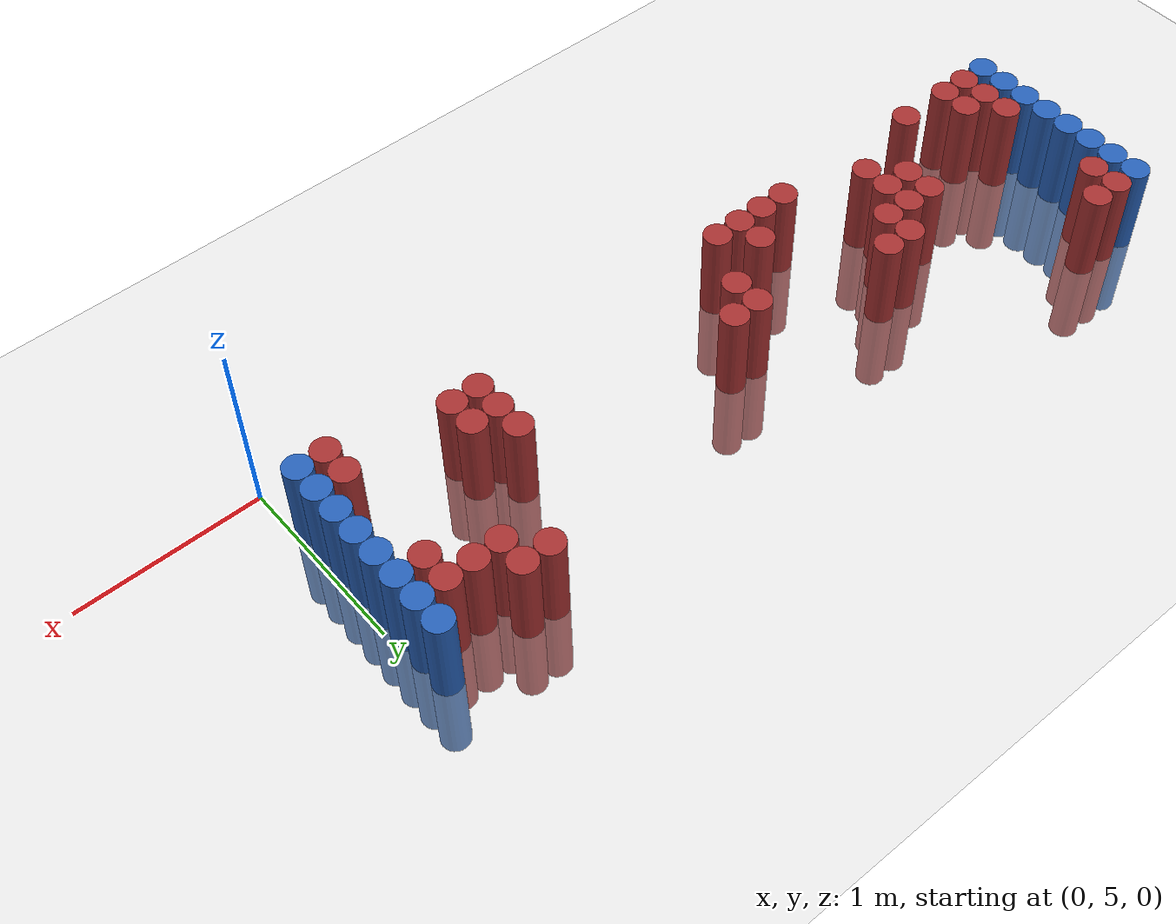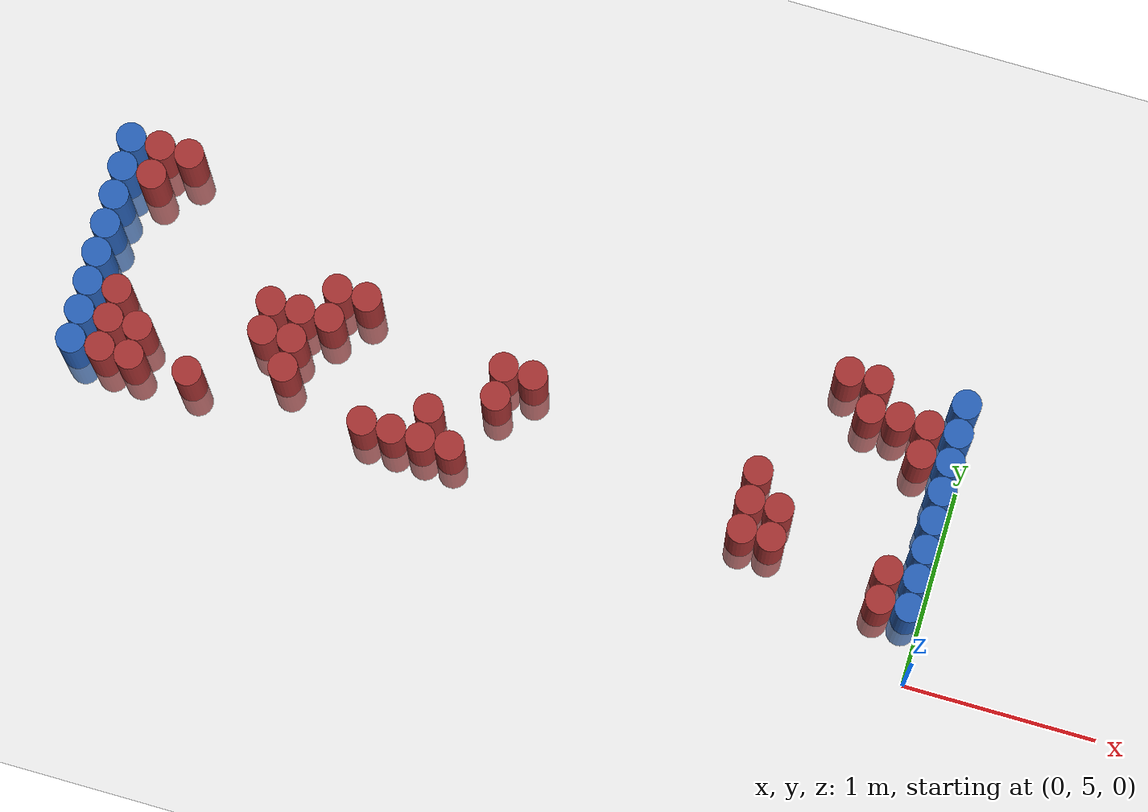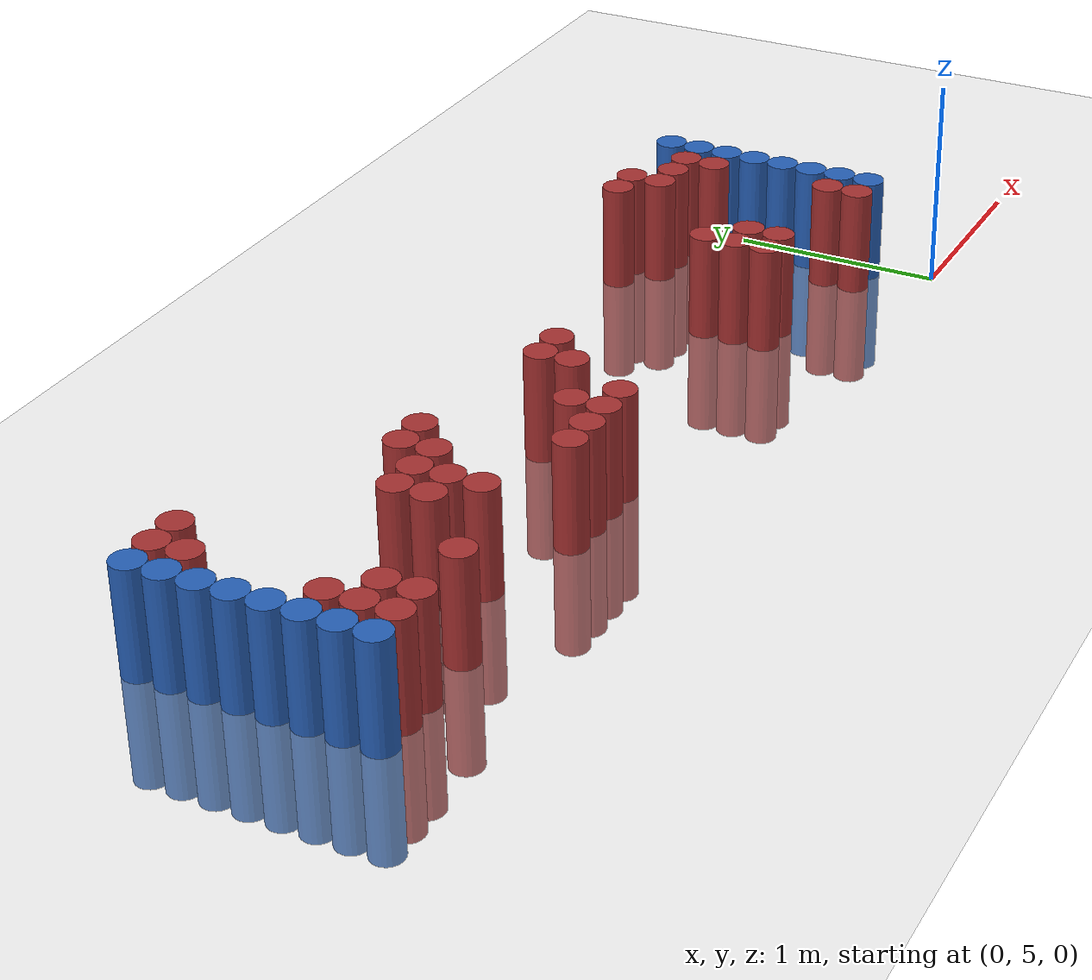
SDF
<sdf version="1.6">
 <world name="default">
  <model name="ground_plane">
   <static>1</static>
   <link name="link">
    <collision name="collision">
     <geometry><plane><normal>0 0 1</normal><size>100 100</size></plane></geometry>
     <surface><friction><ode><mu>100</mu><mu2>50</mu2></ode></friction></surface>
    </collision>
    <visual name="visual">
     <cast_shadows>0</cast_shadows>
     <geometry><plane><normal>0 0 1</normal><size>100 100</size></plane></geometry>
     <material>
      <script><uri>file://media/materials/scripts/gazebo.material</uri><name>Gazebo/Grey</name></script>
     </material>
    </visual>
   </link>
  </model>
  <model name="unit_cylinder_98">
   <static>1</static>
   <pose>-4.425000 5.475000 0.000000 0.000000 0.000000 0.000000</pose>
   <link name="link">
    <inertial>
     <mass>1</mass>
     <inertia><ixx>0.145833</ixx><ixy>0</ixy><ixz>0</ixz><iyy>0.145833</iyy><iyz>0</iyz><izz>0.125</izz></inertia>
    </inertial>
    <collision name="collision">
     <geometry><cylinder><radius>0.075000</radius><length>1</length></cylinder></geometry>
    </collision>
    <visual name="visual">
     <geometry><cylinder><radius>0.075000</radius><length>1</length></cylinder></geometry>
     <material>
      <ambient>0.152000 0.379000 0.720000 1</ambient>
      <diffuse>0.152000 0.379000 0.720000 1</diffuse>
     </material>
     <material>
      <script><name>Gazebo/Grey</name><uri>file://media/materials/scripts/gazebo.material</uri></script>
     </material>
    </visual>
   </link>
  </model>
  <model name="unit_cylinder_99">
   <static>1</static>
   <pose>-4.425000 5.625000 0.000000 0.000000 0.000000 0.000000</pose>
   <link name="link">
    <inertial>
     <mass>1</mass>
     <inertia><ixx>0.145833</ixx><ixy>0</ixy><ixz>0</ixz><iyy>0.145833</iyy><iyz>0</iyz><izz>0.125</izz></inertia>
    </inertial>
    <collision name="collision">
     <geometry><cylinder><radius>0.075000</radius><length>1</length></cylinder></geometry>
    </collision>
    <visual name="visual">
     <geometry><cylinder><radius>0.075000</radius><length>1</length></cylinder></geometry>
     <material>
      <ambient>0.152000 0.379000 0.720000 1</ambient>
      <diffuse>0.152000 0.379000 0.720000 1</diffuse>
     </material>
     <material>
      <script><name>Gazebo/Grey</name><uri>file://media/materials/scripts/gazebo.material</uri></script>
     </material>
    </visual>
   </link>
  </model>
  <model name="unit_cylinder_100">
   <static>1</static>
   <pose>-4.425000 5.775000 0.000000 0.000000 0.000000 0.000000</pose>
   <link name="link">
    <inertial>
     <mass>1</mass>
     <inertia><ixx>0.145833</ixx><ixy>0</ixy><ixz>0</ixz><iyy>0.145833</iyy><iyz>0</iyz><izz>0.125</izz></inertia>
    </inertial>
    <collision name="collision">
     <geometry><cylinder><radius>0.075000</radius><length>1</length></cylinder></geometry>
    </collision>
    <visual name="visual">
     <geometry><cylinder><radius>0.075000</radius><length>1</length></cylinder></geometry>
     <material>
      <ambient>0.152000 0.379000 0.720000 1</ambient>
      <diffuse>0.152000 0.379000 0.720000 1</diffuse>
     </material>
     <material>
      <script><name>Gazebo/Grey</name><uri>file://media/materials/scripts/gazebo.material</uri></script>
     </material>
    </visual>
   </link>
  </model>
  <model name="unit_cylinder_101">
   <static>1</static>
   <pose>-4.425000 5.925000 0.000000 0.000000 0.000000 0.000000</pose>
   <link name="link">
    <inertial>
     <mass>1</mass>
     <inertia><ixx>0.145833</ixx><ixy>0</ixy><ixz>0</ixz><iyy>0.145833</iyy><iyz>0</iyz><izz>0.125</izz></inertia>
    </inertial>
    <collision name="collision">
     <geometry><cylinder><radius>0.075000</radius><length>1</length></cylinder></geometry>
    </collision>
    <visual name="visual">
     <geometry><cylinder><radius>0.075000</radius><length>1</length></cylinder></geometry>
     <material>
      <ambient>0.152000 0.379000 0.720000 1</ambient>
      <diffuse>0.152000 0.379000 0.720000 1</diffuse>
     </material>
     <material>
      <script><name>Gazebo/Grey</name><uri>file://media/materials/scripts/gazebo.material</uri></script>
     </material>
    </visual>
   </link>
  </model>
  <model name="unit_cylinder_102">
   <static>1</static>
   <pose>-4.425000 6.075000 0.000000 0.000000 0.000000 0.000000</pose>
   <link name="link">
    <inertial>
     <mass>1</mass>
     <inertia><ixx>0.145833</ixx><ixy>0</ixy><ixz>0</ixz><iyy>0.145833</iyy><iyz>0</iyz><izz>0.125</izz></inertia>
    </inertial>
    <collision name="collision">
     <geometry><cylinder><radius>0.075000</radius><length>1</length></cylinder></geometry>
    </collision>
    <visual name="visual">
     <geometry><cylinder><radius>0.075000</radius><length>1</length></cylinder></geometry>
     <material>
      <ambient>0.152000 0.379000 0.720000 1</ambient>
      <diffuse>0.152000 0.379000 0.720000 1</diffuse>
     </material>
     <material>
      <script><name>Gazebo/Grey</name><uri>file://media/materials/scripts/gazebo.material</uri></script>
     </material>
    </visual>
   </link>
  </model>
  <model name="unit_cylinder_103">
   <static>1</static>
   <pose>-4.425000 6.225000 0.000000 0.000000 0.000000 0.000000</pose>
   <link name="link">
    <inertial>
     <mass>1</mass>
     <inertia><ixx>0.145833</ixx><ixy>0</ixy><ixz>0</ixz><iyy>0.145833</iyy><iyz>0</iyz><izz>0.125</izz></inertia>
    </inertial>
    <collision name="collision">
     <geometry><cylinder><radius>0.075000</radius><length>1</length></cylinder></geometry>
    </collision>
    <visual name="visual">
     <geometry><cylinder><radius>0.075000</radius><length>1</length></cylinder></geometry>
     <material>
      <ambient>0.152000 0.379000 0.720000 1</ambient>
      <diffuse>0.152000 0.379000 0.720000 1</diffuse>
     </material>
     <material>
      <script><name>Gazebo/Grey</name><uri>file://media/materials/scripts/gazebo.material</uri></script>
     </material>
    </visual>
   </link>
  </model>
  <model name="unit_cylinder_104">
   <static>1</static>
   <pose>-4.425000 6.375000 0.000000 0.000000 0.000000 0.000000</pose>
   <link name="link">
    <inertial>
     <mass>1</mass>
     <inertia><ixx>0.145833</ixx><ixy>0</ixy><ixz>0</ixz><iyy>0.145833</iyy><iyz>0</iyz><izz>0.125</izz></inertia>
    </inertial>
    <collision name="collision">
     <geometry><cylinder><radius>0.075000</radius><length>1</length></cylinder></geometry>
    </collision>
    <visual name="visual">
     <geometry><cylinder><radius>0.075000</radius><length>1</length></cylinder></geometry>
     <material>
      <ambient>0.152000 0.379000 0.720000 1</ambient>
      <diffuse>0.152000 0.379000 0.720000 1</diffuse>
     </material>
     <material>
      <script><name>Gazebo/Grey</name><uri>file://media/materials/scripts/gazebo.material</uri></script>
     </material>
    </visual>
   </link>
  </model>
  <model name="unit_cylinder_105">
   <static>1</static>
   <pose>-4.425000 6.525000 0.000000 0.000000 0.000000 0.000000</pose>
   <link name="link">
    <inertial>
     <mass>1</mass>
     <inertia><ixx>0.145833</ixx><ixy>0</ixy><ixz>0</ixz><iyy>0.145833</iyy><iyz>0</iyz><izz>0.125</izz></inertia>
    </inertial>
    <collision name="collision">
     <geometry><cylinder><radius>0.075000</radius><length>1</length></cylinder></geometry>
    </collision>
    <visual name="visual">
     <geometry><cylinder><radius>0.075000</radius><length>1</length></cylinder></geometry>
     <material>
      <ambient>0.152000 0.379000 0.720000 1</ambient>
      <diffuse>0.152000 0.379000 0.720000 1</diffuse>
     </material>
     <material>
      <script><name>Gazebo/Grey</name><uri>file://media/materials/scripts/gazebo.material</uri></script>
     </material>
    </visual>
   </link>
  </model>
  <model name="unit_cylinder_127">
   <static>1</static>
   <pose>-4.275000 5.475000 0.000000 0.000000 0.000000 0.000000</pose>
   <link name="link">
    <inertial>
     <mass>1</mass>
     <inertia><ixx>0.145833</ixx><ixy>0</ixy><ixz>0</ixz><iyy>0.145833</iyy><iyz>0</iyz><izz>0.125</izz></inertia>
    </inertial>
    <collision name="collision">
     <geometry><cylinder><radius>0.075000</radius><length>1</length></cylinder></geometry>
    </collision>
    <visual name="visual">
     <geometry><cylinder><radius>0.075000</radius><length>1</length></cylinder></geometry>
     <material>
      <ambient>0.648000 0.192000 0.192000 1</ambient>
      <diffuse>0.648000 0.192000 0.192000 1</diffuse>
     </material>
     <material>
      <script><name>Gazebo/Grey</name><uri>file://media/materials/scripts/gazebo.material</uri></script>
     </material>
    </visual>
   </link>
  </model>
  <model name="unit_cylinder_128">
   <static>1</static>
   <pose>-4.275000 5.625000 0.000000 0.000000 0.000000 0.000000</pose>
   <link name="link">
    <inertial>
     <mass>1</mass>
     <inertia><ixx>0.145833</ixx><ixy>0</ixy><ixz>0</ixz><iyy>0.145833</iyy><iyz>0</iyz><izz>0.125</izz></inertia>
    </inertial>
    <collision name="collision">
     <geometry><cylinder><radius>0.075000</radius><length>1</length></cylinder></geometry>
    </collision>
    <visual name="visual">
     <geometry><cylinder><radius>0.075000</radius><length>1</length></cylinder></geometry>
     <material>
      <ambient>0.648000 0.192000 0.192000 1</ambient>
      <diffuse>0.648000 0.192000 0.192000 1</diffuse>
     </material>
     <material>
      <script><name>Gazebo/Grey</name><uri>file://media/materials/scripts/gazebo.material</uri></script>
     </material>
    </visual>
   </link>
  </model>
  <model name="unit_cylinder_129">
   <static>1</static>
   <pose>-4.275000 5.775000 0.000000 0.000000 0.000000 0.000000</pose>
   <link name="link">
    <inertial>
     <mass>1</mass>
     <inertia><ixx>0.145833</ixx><ixy>0</ixy><ixz>0</ixz><iyy>0.145833</iyy><iyz>0</iyz><izz>0.125</izz></inertia>
    </inertial>
    <collision name="collision">
     <geometry><cylinder><radius>0.075000</radius><length>1</length></cylinder></geometry>
    </collision>
    <visual name="visual">
     <geometry><cylinder><radius>0.075000</radius><length>1</length></cylinder></geometry>
     <material>
      <ambient>0.648000 0.192000 0.192000 1</ambient>
      <diffuse>0.648000 0.192000 0.192000 1</diffuse>
     </material>
     <material>
      <script><name>Gazebo/Grey</name><uri>file://media/materials/scripts/gazebo.material</uri></script>
     </material>
    </visual>
   </link>
  </model>
  <model name="unit_cylinder_130">
   <static>1</static>
   <pose>-4.275000 6.375000 0.000000 0.000000 0.000000 0.000000</pose>
   <link name="link">
    <inertial>
     <mass>1</mass>
     <inertia><ixx>0.145833</ixx><ixy>0</ixy><ixz>0</ixz><iyy>0.145833</iyy><iyz>0</iyz><izz>0.125</izz></inertia>
    </inertial>
    <collision name="collision">
     <geometry><cylinder><radius>0.075000</radius><length>1</length></cylinder></geometry>
    </collision>
    <visual name="visual">
     <geometry><cylinder><radius>0.075000</radius><length>1</length></cylinder></geometry>
     <material>
      <ambient>0.648000 0.192000 0.192000 1</ambient>
      <diffuse>0.648000 0.192000 0.192000 1</diffuse>
     </material>
     <material>
      <script><name>Gazebo/Grey</name><uri>file://media/materials/scripts/gazebo.material</uri></script>
     </material>
    </visual>
   </link>
  </model>
  <model name="unit_cylinder_131">
   <static>1</static>
   <pose>-4.275000 6.525000 0.000000 0.000000 0.000000 0.000000</pose>
   <link name="link">
    <inertial>
     <mass>1</mass>
     <inertia><ixx>0.145833</ixx><ixy>0</ixy><ixz>0</ixz><iyy>0.145833</iyy><iyz>0</iyz><izz>0.125</izz></inertia>
    </inertial>
    <collision name="collision">
     <geometry><cylinder><radius>0.075000</radius><length>1</length></cylinder></geometry>
    </collision>
    <visual name="visual">
     <geometry><cylinder><radius>0.075000</radius><length>1</length></cylinder></geometry>
     <material>
      <ambient>0.648000 0.192000 0.192000 1</ambient>
      <diffuse>0.648000 0.192000 0.192000 1</diffuse>
     </material>
     <material>
      <script><name>Gazebo/Grey</name><uri>file://media/materials/scripts/gazebo.material</uri></script>
     </material>
    </visual>
   </link>
  </model>
  <model name="unit_cylinder_148">
   <static>1</static>
   <pose>-4.125000 5.475000 0.000000 0.000000 0.000000 0.000000</pose>
   <link name="link">
    <inertial>
     <mass>1</mass>
     <inertia><ixx>0.145833</ixx><ixy>0</ixy><ixz>0</ixz><iyy>0.145833</iyy><iyz>0</iyz><izz>0.125</izz></inertia>
    </inertial>
    <collision name="collision">
     <geometry><cylinder><radius>0.075000</radius><length>1</length></cylinder></geometry>
    </collision>
    <visual name="visual">
     <geometry><cylinder><radius>0.075000</radius><length>1</length></cylinder></geometry>
     <material>
      <ambient>0.648000 0.192000 0.192000 1</ambient>
      <diffuse>0.648000 0.192000 0.192000 1</diffuse>
     </material>
     <material>
      <script><name>Gazebo/Grey</name><uri>file://media/materials/scripts/gazebo.material</uri></script>
     </material>
    </visual>
   </link>
  </model>
  <model name="unit_cylinder_149">
   <static>1</static>
   <pose>-4.125000 5.625000 0.000000 0.000000 0.000000 0.000000</pose>
   <link name="link">
    <inertial>
     <mass>1</mass>
     <inertia><ixx>0.145833</ixx><ixy>0</ixy><ixz>0</ixz><iyy>0.145833</iyy><iyz>0</iyz><izz>0.125</izz></inertia>
    </inertial>
    <collision name="collision">
     <geometry><cylinder><radius>0.075000</radius><length>1</length></cylinder></geometry>
    </collision>
    <visual name="visual">
     <geometry><cylinder><radius>0.075000</radius><length>1</length></cylinder></geometry>
     <material>
      <ambient>0.648000 0.192000 0.192000 1</ambient>
      <diffuse>0.648000 0.192000 0.192000 1</diffuse>
     </material>
     <material>
      <script><name>Gazebo/Grey</name><uri>file://media/materials/scripts/gazebo.material</uri></script>
     </material>
    </visual>
   </link>
  </model>
  <model name="unit_cylinder_150">
   <static>1</static>
   <pose>-4.125000 6.525000 0.000000 0.000000 0.000000 0.000000</pose>
   <link name="link">
    <inertial>
     <mass>1</mass>
     <inertia><ixx>0.145833</ixx><ixy>0</ixy><ixz>0</ixz><iyy>0.145833</iyy><iyz>0</iyz><izz>0.125</izz></inertia>
    </inertial>
    <collision name="collision">
     <geometry><cylinder><radius>0.075000</radius><length>1</length></cylinder></geometry>
    </collision>
    <visual name="visual">
     <geometry><cylinder><radius>0.075000</radius><length>1</length></cylinder></geometry>
     <material>
      <ambient>0.648000 0.192000 0.192000 1</ambient>
      <diffuse>0.648000 0.192000 0.192000 1</diffuse>
     </material>
     <material>
      <script><name>Gazebo/Grey</name><uri>file://media/materials/scripts/gazebo.material</uri></script>
     </material>
    </visual>
   </link>
  </model>
  <model name="unit_cylinder_161">
   <static>1</static>
   <pose>-3.825000 5.475000 0.000000 0.000000 0.000000 0.000000</pose>
   <link name="link">
    <inertial>
     <mass>1</mass>
     <inertia><ixx>0.145833</ixx><ixy>0</ixy><ixz>0</ixz><iyy>0.145833</iyy><iyz>0</iyz><izz>0.125</izz></inertia>
    </inertial>
    <collision name="collision">
     <geometry><cylinder><radius>0.075000</radius><length>1</length></cylinder></geometry>
    </collision>
    <visual name="visual">
     <geometry><cylinder><radius>0.075000</radius><length>1</length></cylinder></geometry>
     <material>
      <ambient>0.648000 0.192000 0.192000 1</ambient>
      <diffuse>0.648000 0.192000 0.192000 1</diffuse>
     </material>
     <material>
      <script><name>Gazebo/Grey</name><uri>file://media/materials/scripts/gazebo.material</uri></script>
     </material>
    </visual>
   </link>
  </model>
  <model name="unit_cylinder_162">
   <static>1</static>
   <pose>-3.525000 5.775000 0.000000 0.000000 0.000000 0.000000</pose>
   <link name="link">
    <inertial>
     <mass>1</mass>
     <inertia><ixx>0.145833</ixx><ixy>0</ixy><ixz>0</ixz><iyy>0.145833</iyy><iyz>0</iyz><izz>0.125</izz></inertia>
    </inertial>
    <collision name="collision">
     <geometry><cylinder><radius>0.075000</radius><length>1</length></cylinder></geometry>
    </collision>
    <visual name="visual">
     <geometry><cylinder><radius>0.075000</radius><length>1</length></cylinder></geometry>
     <material>
      <ambient>0.648000 0.192000 0.192000 1</ambient>
      <diffuse>0.648000 0.192000 0.192000 1</diffuse>
     </material>
     <material>
      <script><name>Gazebo/Grey</name><uri>file://media/materials/scripts/gazebo.material</uri></script>
     </material>
    </visual>
   </link>
  </model>
  <model name="unit_cylinder_163">
   <static>1</static>
   <pose>-3.525000 5.925000 0.000000 0.000000 0.000000 0.000000</pose>
   <link name="link">
    <inertial>
     <mass>1</mass>
     <inertia><ixx>0.145833</ixx><ixy>0</ixy><ixz>0</ixz><iyy>0.145833</iyy><iyz>0</iyz><izz>0.125</izz></inertia>
    </inertial>
    <collision name="collision">
     <geometry><cylinder><radius>0.075000</radius><length>1</length></cylinder></geometry>
    </collision>
    <visual name="visual">
     <geometry><cylinder><radius>0.075000</radius><length>1</length></cylinder></geometry>
     <material>
      <ambient>0.648000 0.192000 0.192000 1</ambient>
      <diffuse>0.648000 0.192000 0.192000 1</diffuse>
     </material>
     <material>
      <script><name>Gazebo/Grey</name><uri>file://media/materials/scripts/gazebo.material</uri></script>
     </material>
    </visual>
   </link>
  </model>
  <model name="unit_cylinder_164">
   <static>1</static>
   <pose>-3.375000 5.625000 0.000000 0.000000 0.000000 0.000000</pose>
   <link name="link">
    <inertial>
     <mass>1</mass>
     <inertia><ixx>0.145833</ixx><ixy>0</ixy><ixz>0</ixz><iyy>0.145833</iyy><iyz>0</iyz><izz>0.125</izz></inertia>
    </inertial>
    <collision name="collision">
     <geometry><cylinder><radius>0.075000</radius><length>1</length></cylinder></geometry>
    </collision>
    <visual name="visual">
     <geometry><cylinder><radius>0.075000</radius><length>1</length></cylinder></geometry>
     <material>
      <ambient>0.648000 0.192000 0.192000 1</ambient>
      <diffuse>0.648000 0.192000 0.192000 1</diffuse>
     </material>
     <material>
      <script><name>Gazebo/Grey</name><uri>file://media/materials/scripts/gazebo.material</uri></script>
     </material>
    </visual>
   </link>
  </model>
  <model name="unit_cylinder_165">
   <static>1</static>
   <pose>-3.375000 5.775000 0.000000 0.000000 0.000000 0.000000</pose>
   <link name="link">
    <inertial>
     <mass>1</mass>
     <inertia><ixx>0.145833</ixx><ixy>0</ixy><ixz>0</ixz><iyy>0.145833</iyy><iyz>0</iyz><izz>0.125</izz></inertia>
    </inertial>
    <collision name="collision">
     <geometry><cylinder><radius>0.075000</radius><length>1</length></cylinder></geometry>
    </collision>
    <visual name="visual">
     <geometry><cylinder><radius>0.075000</radius><length>1</length></cylinder></geometry>
     <material>
      <ambient>0.648000 0.192000 0.192000 1</ambient>
      <diffuse>0.648000 0.192000 0.192000 1</diffuse>
     </material>
     <material>
      <script><name>Gazebo/Grey</name><uri>file://media/materials/scripts/gazebo.material</uri></script>
     </material>
    </visual>
   </link>
  </model>
  <model name="unit_cylinder_166">
   <static>1</static>
   <pose>-3.375000 5.925000 0.000000 0.000000 0.000000 0.000000</pose>
   <link name="link">
    <inertial>
     <mass>1</mass>
     <inertia><ixx>0.145833</ixx><ixy>0</ixy><ixz>0</ixz><iyy>0.145833</iyy><iyz>0</iyz><izz>0.125</izz></inertia>
    </inertial>
    <collision name="collision">
     <geometry><cylinder><radius>0.075000</radius><length>1</length></cylinder></geometry>
    </collision>
    <visual name="visual">
     <geometry><cylinder><radius>0.075000</radius><length>1</length></cylinder></geometry>
     <material>
      <ambient>0.648000 0.192000 0.192000 1</ambient>
      <diffuse>0.648000 0.192000 0.192000 1</diffuse>
     </material>
     <material>
      <script><name>Gazebo/Grey</name><uri>file://media/materials/scripts/gazebo.material</uri></script>
     </material>
    </visual>
   </link>
  </model>
  <model name="unit_cylinder_167">
   <static>1</static>
   <pose>-3.225000 5.925000 0.000000 0.000000 0.000000 0.000000</pose>
   <link name="link">
    <inertial>
     <mass>1</mass>
     <inertia><ixx>0.145833</ixx><ixy>0</ixy><ixz>0</ixz><iyy>0.145833</iyy><iyz>0</iyz><izz>0.125</izz></inertia>
    </inertial>
    <collision name="collision">
     <geometry><cylinder><radius>0.075000</radius><length>1</length></cylinder></geometry>
    </collision>
    <visual name="visual">
     <geometry><cylinder><radius>0.075000</radius><length>1</length></cylinder></geometry>
     <material>
      <ambient>0.648000 0.192000 0.192000 1</ambient>
      <diffuse>0.648000 0.192000 0.192000 1</diffuse>
     </material>
     <material>
      <script><name>Gazebo/Grey</name><uri>file://media/materials/scripts/gazebo.material</uri></script>
     </material>
    </visual>
   </link>
  </model>
  <model name="unit_cylinder_168">
   <static>1</static>
   <pose>-3.225000 6.075000 0.000000 0.000000 0.000000 0.000000</pose>
   <link name="link">
    <inertial>
     <mass>1</mass>
     <inertia><ixx>0.145833</ixx><ixy>0</ixy><ixz>0</ixz><iyy>0.145833</iyy><iyz>0</iyz><izz>0.125</izz></inertia>
    </inertial>
    <collision name="collision">
     <geometry><cylinder><radius>0.075000</radius><length>1</length></cylinder></geometry>
    </collision>
    <visual name="visual">
     <geometry><cylinder><radius>0.075000</radius><length>1</length></cylinder></geometry>
     <material>
      <ambient>0.648000 0.192000 0.192000 1</ambient>
      <diffuse>0.648000 0.192000 0.192000 1</diffuse>
     </material>
     <material>
      <script><name>Gazebo/Grey</name><uri>file://media/materials/scripts/gazebo.material</uri></script>
     </material>
    </visual>
   </link>
  </model>
  <model name="unit_cylinder_170">
   <static>1</static>
   <pose>-3.075000 6.075000 0.000000 0.000000 0.000000 0.000000</pose>
   <link name="link">
    <inertial>
     <mass>1</mass>
     <inertia><ixx>0.145833</ixx><ixy>0</ixy><ixz>0</ixz><iyy>0.145833</iyy><iyz>0</iyz><izz>0.125</izz></inertia>
    </inertial>
    <collision name="collision">
     <geometry><cylinder><radius>0.075000</radius><length>1</length></cylinder></geometry>
    </collision>
    <visual name="visual">
     <geometry><cylinder><radius>0.075000</radius><length>1</length></cylinder></geometry>
     <material>
      <ambient>0.648000 0.192000 0.192000 1</ambient>
      <diffuse>0.648000 0.192000 0.192000 1</diffuse>
     </material>
     <material>
      <script><name>Gazebo/Grey</name><uri>file://media/materials/scripts/gazebo.material</uri></script>
     </material>
    </visual>
   </link>
  </model>
  <model name="unit_cylinder_177">
   <static>1</static>
   <pose>-2.925000 5.475000 0.000000 0.000000 0.000000 0.000000</pose>
   <link name="link">
    <inertial>
     <mass>1</mass>
     <inertia><ixx>0.145833</ixx><ixy>0</ixy><ixz>0</ixz><iyy>0.145833</iyy><iyz>0</iyz><izz>0.125</izz></inertia>
    </inertial>
    <collision name="collision">
     <geometry><cylinder><radius>0.075000</radius><length>1</length></cylinder></geometry>
    </collision>
    <visual name="visual">
     <geometry><cylinder><radius>0.075000</radius><length>1</length></cylinder></geometry>
     <material>
      <ambient>0.648000 0.192000 0.192000 1</ambient>
      <diffuse>0.648000 0.192000 0.192000 1</diffuse>
     </material>
     <material>
      <script><name>Gazebo/Grey</name><uri>file://media/materials/scripts/gazebo.material</uri></script>
     </material>
    </visual>
   </link>
  </model>
  <model name="unit_cylinder_183">
   <static>1</static>
   <pose>-2.775000 5.475000 0.000000 0.000000 0.000000 0.000000</pose>
   <link name="link">
    <inertial>
     <mass>1</mass>
     <inertia><ixx>0.145833</ixx><ixy>0</ixy><ixz>0</ixz><iyy>0.145833</iyy><iyz>0</iyz><izz>0.125</izz></inertia>
    </inertial>
    <collision name="collision">
     <geometry><cylinder><radius>0.075000</radius><length>1</length></cylinder></geometry>
    </collision>
    <visual name="visual">
     <geometry><cylinder><radius>0.075000</radius><length>1</length></cylinder></geometry>
     <material>
      <ambient>0.648000 0.192000 0.192000 1</ambient>
      <diffuse>0.648000 0.192000 0.192000 1</diffuse>
     </material>
     <material>
      <script><name>Gazebo/Grey</name><uri>file://media/materials/scripts/gazebo.material</uri></script>
     </material>
    </visual>
   </link>
  </model>
  <model name="unit_cylinder_186">
   <static>1</static>
   <pose>-2.625000 5.475000 0.000000 0.000000 0.000000 0.000000</pose>
   <link name="link">
    <inertial>
     <mass>1</mass>
     <inertia><ixx>0.145833</ixx><ixy>0</ixy><ixz>0</ixz><iyy>0.145833</iyy><iyz>0</iyz><izz>0.125</izz></inertia>
    </inertial>
    <collision name="collision">
     <geometry><cylinder><radius>0.075000</radius><length>1</length></cylinder></geometry>
    </collision>
    <visual name="visual">
     <geometry><cylinder><radius>0.075000</radius><length>1</length></cylinder></geometry>
     <material>
      <ambient>0.648000 0.192000 0.192000 1</ambient>
      <diffuse>0.648000 0.192000 0.192000 1</diffuse>
     </material>
     <material>
      <script><name>Gazebo/Grey</name><uri>file://media/materials/scripts/gazebo.material</uri></script>
     </material>
    </visual>
   </link>
  </model>
  <model name="unit_cylinder_187">
   <static>1</static>
   <pose>-2.625000 5.625000 0.000000 0.000000 0.000000 0.000000</pose>
   <link name="link">
    <inertial>
     <mass>1</mass>
     <inertia><ixx>0.145833</ixx><ixy>0</ixy><ixz>0</ixz><iyy>0.145833</iyy><iyz>0</iyz><izz>0.125</izz></inertia>
    </inertial>
    <collision name="collision">
     <geometry><cylinder><radius>0.075000</radius><length>1</length></cylinder></geometry>
    </collision>
    <visual name="visual">
     <geometry><cylinder><radius>0.075000</radius><length>1</length></cylinder></geometry>
     <material>
      <ambient>0.648000 0.192000 0.192000 1</ambient>
      <diffuse>0.648000 0.192000 0.192000 1</diffuse>
     </material>
     <material>
      <script><name>Gazebo/Grey</name><uri>file://media/materials/scripts/gazebo.material</uri></script>
     </material>
    </visual>
   </link>
  </model>
  <model name="unit_cylinder_194">
   <static>1</static>
   <pose>-2.475000 5.475000 0.000000 0.000000 0.000000 0.000000</pose>
   <link name="link">
    <inertial>
     <mass>1</mass>
     <inertia><ixx>0.145833</ixx><ixy>0</ixy><ixz>0</ixz><iyy>0.145833</iyy><iyz>0</iyz><izz>0.125</izz></inertia>
    </inertial>
    <collision name="collision">
     <geometry><cylinder><radius>0.075000</radius><length>1</length></cylinder></geometry>
    </collision>
    <visual name="visual">
     <geometry><cylinder><radius>0.075000</radius><length>1</length></cylinder></geometry>
     <material>
      <ambient>0.648000 0.192000 0.192000 1</ambient>
      <diffuse>0.648000 0.192000 0.192000 1</diffuse>
     </material>
     <material>
      <script><name>Gazebo/Grey</name><uri>file://media/materials/scripts/gazebo.material</uri></script>
     </material>
    </visual>
   </link>
  </model>
  <model name="unit_cylinder_199">
   <static>1</static>
   <pose>-2.325000 5.775000 0.000000 0.000000 0.000000 0.000000</pose>
   <link name="link">
    <inertial>
     <mass>1</mass>
     <inertia><ixx>0.145833</ixx><ixy>0</ixy><ixz>0</ixz><iyy>0.145833</iyy><iyz>0</iyz><izz>0.125</izz></inertia>
    </inertial>
    <collision name="collision">
     <geometry><cylinder><radius>0.075000</radius><length>1</length></cylinder></geometry>
    </collision>
    <visual name="visual">
     <geometry><cylinder><radius>0.075000</radius><length>1</length></cylinder></geometry>
     <material>
      <ambient>0.648000 0.192000 0.192000 1</ambient>
      <diffuse>0.648000 0.192000 0.192000 1</diffuse>
     </material>
     <material>
      <script><name>Gazebo/Grey</name><uri>file://media/materials/scripts/gazebo.material</uri></script>
     </material>
    </visual>
   </link>
  </model>
  <model name="unit_cylinder_200">
   <static>1</static>
   <pose>-2.325000 5.925000 0.000000 0.000000 0.000000 0.000000</pose>
   <link name="link">
    <inertial>
     <mass>1</mass>
     <inertia><ixx>0.145833</ixx><ixy>0</ixy><ixz>0</ixz><iyy>0.145833</iyy><iyz>0</iyz><izz>0.125</izz></inertia>
    </inertial>
    <collision name="collision">
     <geometry><cylinder><radius>0.075000</radius><length>1</length></cylinder></geometry>
    </collision>
    <visual name="visual">
     <geometry><cylinder><radius>0.075000</radius><length>1</length></cylinder></geometry>
     <material>
      <ambient>0.648000 0.192000 0.192000 1</ambient>
      <diffuse>0.648000 0.192000 0.192000 1</diffuse>
     </material>
     <material>
      <script><name>Gazebo/Grey</name><uri>file://media/materials/scripts/gazebo.material</uri></script>
     </material>
    </visual>
   </link>
  </model>
  <model name="unit_cylinder_205">
   <static>1</static>
   <pose>-2.175000 5.925000 0.000000 0.000000 0.000000 0.000000</pose>
   <link name="link">
    <inertial>
     <mass>1</mass>
     <inertia><ixx>0.145833</ixx><ixy>0</ixy><ixz>0</ixz><iyy>0.145833</iyy><iyz>0</iyz><izz>0.125</izz></inertia>
    </inertial>
    <collision name="collision">
     <geometry><cylinder><radius>0.075000</radius><length>1</length></cylinder></geometry>
    </collision>
    <visual name="visual">
     <geometry><cylinder><radius>0.075000</radius><length>1</length></cylinder></geometry>
     <material>
      <ambient>0.648000 0.192000 0.192000 1</ambient>
      <diffuse>0.648000 0.192000 0.192000 1</diffuse>
     </material>
     <material>
      <script><name>Gazebo/Grey</name><uri>file://media/materials/scripts/gazebo.material</uri></script>
     </material>
    </visual>
   </link>
  </model>
  <model name="unit_cylinder_239">
   <static>1</static>
   <pose>-0.975000 5.475000 0.000000 0.000000 0.000000 0.000000</pose>
   <link name="link">
    <inertial>
     <mass>1</mass>
     <inertia><ixx>0.145833</ixx><ixy>0</ixy><ixz>0</ixz><iyy>0.145833</iyy><iyz>0</iyz><izz>0.125</izz></inertia>
    </inertial>
    <collision name="collision">
     <geometry><cylinder><radius>0.075000</radius><length>1</length></cylinder></geometry>
    </collision>
    <visual name="visual">
     <geometry><cylinder><radius>0.075000</radius><length>1</length></cylinder></geometry>
     <material>
      <ambient>0.648000 0.192000 0.192000 1</ambient>
      <diffuse>0.648000 0.192000 0.192000 1</diffuse>
     </material>
     <material>
      <script><name>Gazebo/Grey</name><uri>file://media/materials/scripts/gazebo.material</uri></script>
     </material>
    </visual>
   </link>
  </model>
  <model name="unit_cylinder_240">
   <static>1</static>
   <pose>-0.975000 5.625000 0.000000 0.000000 0.000000 0.000000</pose>
   <link name="link">
    <inertial>
     <mass>1</mass>
     <inertia><ixx>0.145833</ixx><ixy>0</ixy><ixz>0</ixz><iyy>0.145833</iyy><iyz>0</iyz><izz>0.125</izz></inertia>
    </inertial>
    <collision name="collision">
     <geometry><cylinder><radius>0.075000</radius><length>1</length></cylinder></geometry>
    </collision>
    <visual name="visual">
     <geometry><cylinder><radius>0.075000</radius><length>1</length></cylinder></geometry>
     <material>
      <ambient>0.648000 0.192000 0.192000 1</ambient>
      <diffuse>0.648000 0.192000 0.192000 1</diffuse>
     </material>
     <material>
      <script><name>Gazebo/Grey</name><uri>file://media/materials/scripts/gazebo.material</uri></script>
     </material>
    </visual>
   </link>
  </model>
  <model name="unit_cylinder_241">
   <static>1</static>
   <pose>-0.975000 5.775000 0.000000 0.000000 0.000000 0.000000</pose>
   <link name="link">
    <inertial>
     <mass>1</mass>
     <inertia><ixx>0.145833</ixx><ixy>0</ixy><ixz>0</ixz><iyy>0.145833</iyy><iyz>0</iyz><izz>0.125</izz></inertia>
    </inertial>
    <collision name="collision">
     <geometry><cylinder><radius>0.075000</radius><length>1</length></cylinder></geometry>
    </collision>
    <visual name="visual">
     <geometry><cylinder><radius>0.075000</radius><length>1</length></cylinder></geometry>
     <material>
      <ambient>0.648000 0.192000 0.192000 1</ambient>
      <diffuse>0.648000 0.192000 0.192000 1</diffuse>
     </material>
     <material>
      <script><name>Gazebo/Grey</name><uri>file://media/materials/scripts/gazebo.material</uri></script>
     </material>
    </visual>
   </link>
  </model>
  <model name="unit_cylinder_247">
   <static>1</static>
   <pose>-0.825000 5.475000 0.000000 0.000000 0.000000 0.000000</pose>
   <link name="link">
    <inertial>
     <mass>1</mass>
     <inertia><ixx>0.145833</ixx><ixy>0</ixy><ixz>0</ixz><iyy>0.145833</iyy><iyz>0</iyz><izz>0.125</izz></inertia>
    </inertial>
    <collision name="collision">
     <geometry><cylinder><radius>0.075000</radius><length>1</length></cylinder></geometry>
    </collision>
    <visual name="visual">
     <geometry><cylinder><radius>0.075000</radius><length>1</length></cylinder></geometry>
     <material>
      <ambient>0.648000 0.192000 0.192000 1</ambient>
      <diffuse>0.648000 0.192000 0.192000 1</diffuse>
     </material>
     <material>
      <script><name>Gazebo/Grey</name><uri>file://media/materials/scripts/gazebo.material</uri></script>
     </material>
    </visual>
   </link>
  </model>
  <model name="unit_cylinder_248">
   <static>1</static>
   <pose>-0.825000 5.625000 0.000000 0.000000 0.000000 0.000000</pose>
   <link name="link">
    <inertial>
     <mass>1</mass>
     <inertia><ixx>0.145833</ixx><ixy>0</ixy><ixz>0</ixz><iyy>0.145833</iyy><iyz>0</iyz><izz>0.125</izz></inertia>
    </inertial>
    <collision name="collision">
     <geometry><cylinder><radius>0.075000</radius><length>1</length></cylinder></geometry>
    </collision>
    <visual name="visual">
     <geometry><cylinder><radius>0.075000</radius><length>1</length></cylinder></geometry>
     <material>
      <ambient>0.648000 0.192000 0.192000 1</ambient>
      <diffuse>0.648000 0.192000 0.192000 1</diffuse>
     </material>
     <material>
      <script><name>Gazebo/Grey</name><uri>file://media/materials/scripts/gazebo.material</uri></script>
     </material>
    </visual>
   </link>
  </model>
  <model name="unit_cylinder_259">
   <static>1</static>
   <pose>-0.675000 6.375000 0.000000 0.000000 0.000000 0.000000</pose>
   <link name="link">
    <inertial>
     <mass>1</mass>
     <inertia><ixx>0.145833</ixx><ixy>0</ixy><ixz>0</ixz><iyy>0.145833</iyy><iyz>0</iyz><izz>0.125</izz></inertia>
    </inertial>
    <collision name="collision">
     <geometry><cylinder><radius>0.075000</radius><length>1</length></cylinder></geometry>
    </collision>
    <visual name="visual">
     <geometry><cylinder><radius>0.075000</radius><length>1</length></cylinder></geometry>
     <material>
      <ambient>0.648000 0.192000 0.192000 1</ambient>
      <diffuse>0.648000 0.192000 0.192000 1</diffuse>
     </material>
     <material>
      <script><name>Gazebo/Grey</name><uri>file://media/materials/scripts/gazebo.material</uri></script>
     </material>
    </visual>
   </link>
  </model>
  <model name="unit_cylinder_268">
   <static>1</static>
   <pose>-0.525000 6.225000 0.000000 0.000000 0.000000 0.000000</pose>
   <link name="link">
    <inertial>
     <mass>1</mass>
     <inertia><ixx>0.145833</ixx><ixy>0</ixy><ixz>0</ixz><iyy>0.145833</iyy><iyz>0</iyz><izz>0.125</izz></inertia>
    </inertial>
    <collision name="collision">
     <geometry><cylinder><radius>0.075000</radius><length>1</length></cylinder></geometry>
    </collision>
    <visual name="visual">
     <geometry><cylinder><radius>0.075000</radius><length>1</length></cylinder></geometry>
     <material>
      <ambient>0.648000 0.192000 0.192000 1</ambient>
      <diffuse>0.648000 0.192000 0.192000 1</diffuse>
     </material>
     <material>
      <script><name>Gazebo/Grey</name><uri>file://media/materials/scripts/gazebo.material</uri></script>
     </material>
    </visual>
   </link>
  </model>
  <model name="unit_cylinder_269">
   <static>1</static>
   <pose>-0.525000 6.375000 0.000000 0.000000 0.000000 0.000000</pose>
   <link name="link">
    <inertial>
     <mass>1</mass>
     <inertia><ixx>0.145833</ixx><ixy>0</ixy><ixz>0</ixz><iyy>0.145833</iyy><iyz>0</iyz><izz>0.125</izz></inertia>
    </inertial>
    <collision name="collision">
     <geometry><cylinder><radius>0.075000</radius><length>1</length></cylinder></geometry>
    </collision>
    <visual name="visual">
     <geometry><cylinder><radius>0.075000</radius><length>1</length></cylinder></geometry>
     <material>
      <ambient>0.648000 0.192000 0.192000 1</ambient>
      <diffuse>0.648000 0.192000 0.192000 1</diffuse>
     </material>
     <material>
      <script><name>Gazebo/Grey</name><uri>file://media/materials/scripts/gazebo.material</uri></script>
     </material>
    </visual>
   </link>
  </model>
  <model name="unit_cylinder_274">
   <static>1</static>
   <pose>-0.375000 6.225000 0.000000 0.000000 0.000000 0.000000</pose>
   <link name="link">
    <inertial>
     <mass>1</mass>
     <inertia><ixx>0.145833</ixx><ixy>0</ixy><ixz>0</ixz><iyy>0.145833</iyy><iyz>0</iyz><izz>0.125</izz></inertia>
    </inertial>
    <collision name="collision">
     <geometry><cylinder><radius>0.075000</radius><length>1</length></cylinder></geometry>
    </collision>
    <visual name="visual">
     <geometry><cylinder><radius>0.075000</radius><length>1</length></cylinder></geometry>
     <material>
      <ambient>0.648000 0.192000 0.192000 1</ambient>
      <diffuse>0.648000 0.192000 0.192000 1</diffuse>
     </material>
     <material>
      <script><name>Gazebo/Grey</name><uri>file://media/materials/scripts/gazebo.material</uri></script>
     </material>
    </visual>
   </link>
  </model>
  <model name="unit_cylinder_281">
   <static>1</static>
   <pose>-0.225000 5.325000 0.000000 0.000000 0.000000 0.000000</pose>
   <link name="link">
    <inertial>
     <mass>1</mass>
     <inertia><ixx>0.145833</ixx><ixy>0</ixy><ixz>0</ixz><iyy>0.145833</iyy><iyz>0</iyz><izz>0.125</izz></inertia>
    </inertial>
    <collision name="collision">
     <geometry><cylinder><radius>0.075000</radius><length>1</length></cylinder></geometry>
    </collision>
    <visual name="visual">
     <geometry><cylinder><radius>0.075000</radius><length>1</length></cylinder></geometry>
     <material>
      <ambient>0.648000 0.192000 0.192000 1</ambient>
      <diffuse>0.648000 0.192000 0.192000 1</diffuse>
     </material>
     <material>
      <script><name>Gazebo/Grey</name><uri>file://media/materials/scripts/gazebo.material</uri></script>
     </material>
    </visual>
   </link>
  </model>
  <model name="unit_cylinder_282">
   <static>1</static>
   <pose>-0.225000 5.475000 0.000000 0.000000 0.000000 0.000000</pose>
   <link name="link">
    <inertial>
     <mass>1</mass>
     <inertia><ixx>0.145833</ixx><ixy>0</ixy><ixz>0</ixz><iyy>0.145833</iyy><iyz>0</iyz><izz>0.125</izz></inertia>
    </inertial>
    <collision name="collision">
     <geometry><cylinder><radius>0.075000</radius><length>1</length></cylinder></geometry>
    </collision>
    <visual name="visual">
     <geometry><cylinder><radius>0.075000</radius><length>1</length></cylinder></geometry>
     <material>
      <ambient>0.648000 0.192000 0.192000 1</ambient>
      <diffuse>0.648000 0.192000 0.192000 1</diffuse>
     </material>
     <material>
      <script><name>Gazebo/Grey</name><uri>file://media/materials/scripts/gazebo.material</uri></script>
     </material>
    </visual>
   </link>
  </model>
  <model name="unit_cylinder_283">
   <static>1</static>
   <pose>-0.225000 6.075000 0.000000 0.000000 0.000000 0.000000</pose>
   <link name="link">
    <inertial>
     <mass>1</mass>
     <inertia><ixx>0.145833</ixx><ixy>0</ixy><ixz>0</ixz><iyy>0.145833</iyy><iyz>0</iyz><izz>0.125</izz></inertia>
    </inertial>
    <collision name="collision">
     <geometry><cylinder><radius>0.075000</radius><length>1</length></cylinder></geometry>
    </collision>
    <visual name="visual">
     <geometry><cylinder><radius>0.075000</radius><length>1</length></cylinder></geometry>
     <material>
      <ambient>0.648000 0.192000 0.192000 1</ambient>
      <diffuse>0.648000 0.192000 0.192000 1</diffuse>
     </material>
     <material>
      <script><name>Gazebo/Grey</name><uri>file://media/materials/scripts/gazebo.material</uri></script>
     </material>
    </visual>
   </link>
  </model>
  <model name="unit_cylinder_284">
   <static>1</static>
   <pose>-0.225000 6.225000 0.000000 0.000000 0.000000 0.000000</pose>
   <link name="link">
    <inertial>
     <mass>1</mass>
     <inertia><ixx>0.145833</ixx><ixy>0</ixy><ixz>0</ixz><iyy>0.145833</iyy><iyz>0</iyz><izz>0.125</izz></inertia>
    </inertial>
    <collision name="collision">
     <geometry><cylinder><radius>0.075000</radius><length>1</length></cylinder></geometry>
    </collision>
    <visual name="visual">
     <geometry><cylinder><radius>0.075000</radius><length>1</length></cylinder></geometry>
     <material>
      <ambient>0.648000 0.192000 0.192000 1</ambient>
      <diffuse>0.648000 0.192000 0.192000 1</diffuse>
     </material>
     <material>
      <script><name>Gazebo/Grey</name><uri>file://media/materials/scripts/gazebo.material</uri></script>
     </material>
    </visual>
   </link>
  </model>
  <model name="unit_cylinder_294">
   <static>1</static>
   <pose>-0.075000 5.325000 0.000000 0.000000 0.000000 0.000000</pose>
   <link name="link">
    <inertial>
     <mass>1</mass>
     <inertia><ixx>0.145833</ixx><ixy>0</ixy><ixz>0</ixz><iyy>0.145833</iyy><iyz>0</iyz><izz>0.125</izz></inertia>
    </inertial>
    <collision name="collision">
     <geometry><cylinder><radius>0.075000</radius><length>1</length></cylinder></geometry>
    </collision>
    <visual name="visual">
     <geometry><cylinder><radius>0.075000</radius><length>1</length></cylinder></geometry>
     <material>
      <ambient>0.152000 0.379000 0.720000 1</ambient>
      <diffuse>0.152000 0.379000 0.720000 1</diffuse>
     </material>
     <material>
      <script><name>Gazebo/Grey</name><uri>file://media/materials/scripts/gazebo.material</uri></script>
     </material>
    </visual>
   </link>
  </model>
  <model name="unit_cylinder_295">
   <static>1</static>
   <pose>-0.075000 5.475000 0.000000 0.000000 0.000000 0.000000</pose>
   <link name="link">
    <inertial>
     <mass>1</mass>
     <inertia><ixx>0.145833</ixx><ixy>0</ixy><ixz>0</ixz><iyy>0.145833</iyy><iyz>0</iyz><izz>0.125</izz></inertia>
    </inertial>
    <collision name="collision">
     <geometry><cylinder><radius>0.075000</radius><length>1</length></cylinder></geometry>
    </collision>
    <visual name="visual">
     <geometry><cylinder><radius>0.075000</radius><length>1</length></cylinder></geometry>
     <material>
      <ambient>0.152000 0.379000 0.720000 1</ambient>
      <diffuse>0.152000 0.379000 0.720000 1</diffuse>
     </material>
     <material>
      <script><name>Gazebo/Grey</name><uri>file://media/materials/scripts/gazebo.material</uri></script>
     </material>
    </visual>
   </link>
  </model>
  <model name="unit_cylinder_296">
   <static>1</static>
   <pose>-0.075000 5.625000 0.000000 0.000000 0.000000 0.000000</pose>
   <link name="link">
    <inertial>
     <mass>1</mass>
     <inertia><ixx>0.145833</ixx><ixy>0</ixy><ixz>0</ixz><iyy>0.145833</iyy><iyz>0</iyz><izz>0.125</izz></inertia>
    </inertial>
    <collision name="collision">
     <geometry><cylinder><radius>0.075000</radius><length>1</length></cylinder></geometry>
    </collision>
    <visual name="visual">
     <geometry><cylinder><radius>0.075000</radius><length>1</length></cylinder></geometry>
     <material>
      <ambient>0.152000 0.379000 0.720000 1</ambient>
      <diffuse>0.152000 0.379000 0.720000 1</diffuse>
     </material>
     <material>
      <script><name>Gazebo/Grey</name><uri>file://media/materials/scripts/gazebo.material</uri></script>
     </material>
    </visual>
   </link>
  </model>
  <model name="unit_cylinder_297">
   <static>1</static>
   <pose>-0.075000 5.775000 0.000000 0.000000 0.000000 0.000000</pose>
   <link name="link">
    <inertial>
     <mass>1</mass>
     <inertia><ixx>0.145833</ixx><ixy>0</ixy><ixz>0</ixz><iyy>0.145833</iyy><iyz>0</iyz><izz>0.125</izz></inertia>
    </inertial>
    <collision name="collision">
     <geometry><cylinder><radius>0.075000</radius><length>1</length></cylinder></geometry>
    </collision>
    <visual name="visual">
     <geometry><cylinder><radius>0.075000</radius><length>1</length></cylinder></geometry>
     <material>
      <ambient>0.152000 0.379000 0.720000 1</ambient>
      <diffuse>0.152000 0.379000 0.720000 1</diffuse>
     </material>
     <material>
      <script><name>Gazebo/Grey</name><uri>file://media/materials/scripts/gazebo.material</uri></script>
     </material>
    </visual>
   </link>
  </model>
  <model name="unit_cylinder_298">
   <static>1</static>
   <pose>-0.075000 5.925000 0.000000 0.000000 0.000000 0.000000</pose>
   <link name="link">
    <inertial>
     <mass>1</mass>
     <inertia><ixx>0.145833</ixx><ixy>0</ixy><ixz>0</ixz><iyy>0.145833</iyy><iyz>0</iyz><izz>0.125</izz></inertia>
    </inertial>
    <collision name="collision">
     <geometry><cylinder><radius>0.075000</radius><length>1</length></cylinder></geometry>
    </collision>
    <visual name="visual">
     <geometry><cylinder><radius>0.075000</radius><length>1</length></cylinder></geometry>
     <material>
      <ambient>0.152000 0.379000 0.720000 1</ambient>
      <diffuse>0.152000 0.379000 0.720000 1</diffuse>
     </material>
     <material>
      <script><name>Gazebo/Grey</name><uri>file://media/materials/scripts/gazebo.material</uri></script>
     </material>
    </visual>
   </link>
  </model>
  <model name="unit_cylinder_299">
   <static>1</static>
   <pose>-0.075000 6.075000 0.000000 0.000000 0.000000 0.000000</pose>
   <link name="link">
    <inertial>
     <mass>1</mass>
     <inertia><ixx>0.145833</ixx><ixy>0</ixy><ixz>0</ixz><iyy>0.145833</iyy><iyz>0</iyz><izz>0.125</izz></inertia>
    </inertial>
    <collision name="collision">
     <geometry><cylinder><radius>0.075000</radius><length>1</length></cylinder></geometry>
    </collision>
    <visual name="visual">
     <geometry><cylinder><radius>0.075000</radius><length>1</length></cylinder></geometry>
     <material>
      <ambient>0.152000 0.379000 0.720000 1</ambient>
      <diffuse>0.152000 0.379000 0.720000 1</diffuse>
     </material>
     <material>
      <script><name>Gazebo/Grey</name><uri>file://media/materials/scripts/gazebo.material</uri></script>
     </material>
    </visual>
   </link>
  </model>
  <model name="unit_cylinder_300">
   <static>1</static>
   <pose>-0.075000 6.225000 0.000000 0.000000 0.000000 0.000000</pose>
   <link name="link">
    <inertial>
     <mass>1</mass>
     <inertia><ixx>0.145833</ixx><ixy>0</ixy><ixz>0</ixz><iyy>0.145833</iyy><iyz>0</iyz><izz>0.125</izz></inertia>
    </inertial>
    <collision name="collision">
     <geometry><cylinder><radius>0.075000</radius><length>1</length></cylinder></geometry>
    </collision>
    <visual name="visual">
     <geometry><cylinder><radius>0.075000</radius><length>1</length></cylinder></geometry>
     <material>
      <ambient>0.152000 0.379000 0.720000 1</ambient>
      <diffuse>0.152000 0.379000 0.720000 1</diffuse>
     </material>
     <material>
      <script><name>Gazebo/Grey</name><uri>file://media/materials/scripts/gazebo.material</uri></script>
     </material>
    </visual>
   </link>
  </model>
  <model name="unit_cylinder_301">
   <static>1</static>
   <pose>-0.075000 6.375000 0.000000 0.000000 0.000000 0.000000</pose>
   <link name="link">
    <inertial>
     <mass>1</mass>
     <inertia><ixx>0.145833</ixx><ixy>0</ixy><ixz>0</ixz><iyy>0.145833</iyy><iyz>0</iyz><izz>0.125</izz></inertia>
    </inertial>
    <collision name="collision">
     <geometry><cylinder><radius>0.075000</radius><length>1</length></cylinder></geometry>
    </collision>
    <visual name="visual">
     <geometry><cylinder><radius>0.075000</radius><length>1</length></cylinder></geometry>
     <material>
      <ambient>0.152000 0.379000 0.720000 1</ambient>
      <diffuse>0.152000 0.379000 0.720000 1</diffuse>
     </material>
     <material>
      <script><name>Gazebo/Grey</name><uri>file://media/materials/scripts/gazebo.material</uri></script>
     </material>
    </visual>
   </link>
  </model>
 </world>
</sdf>
